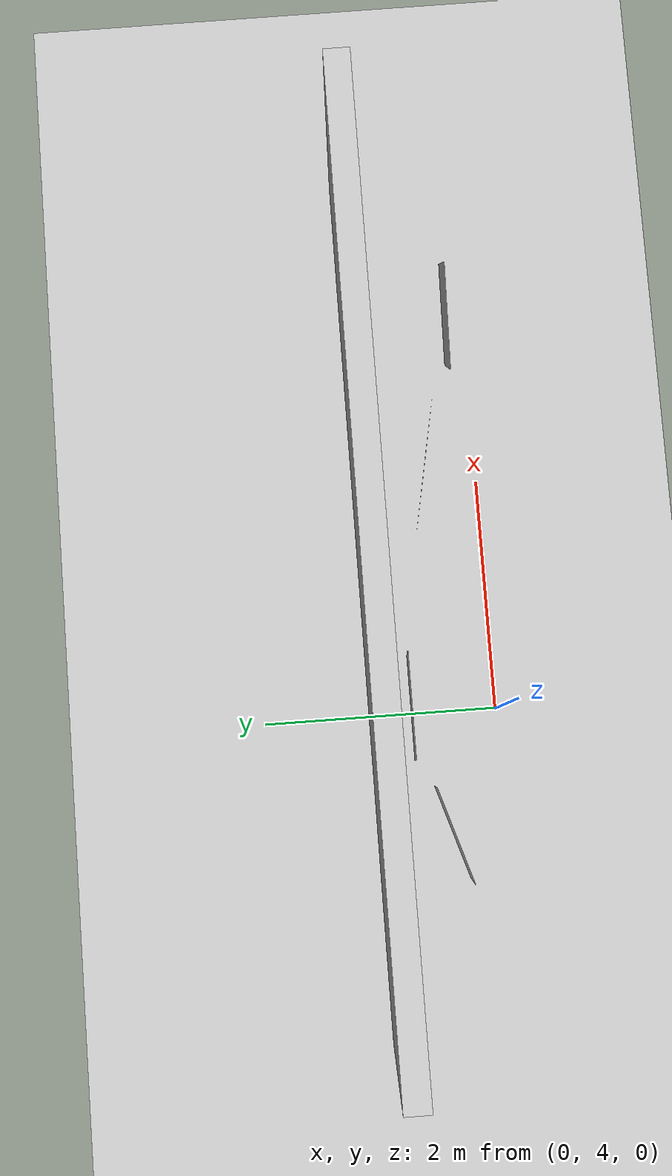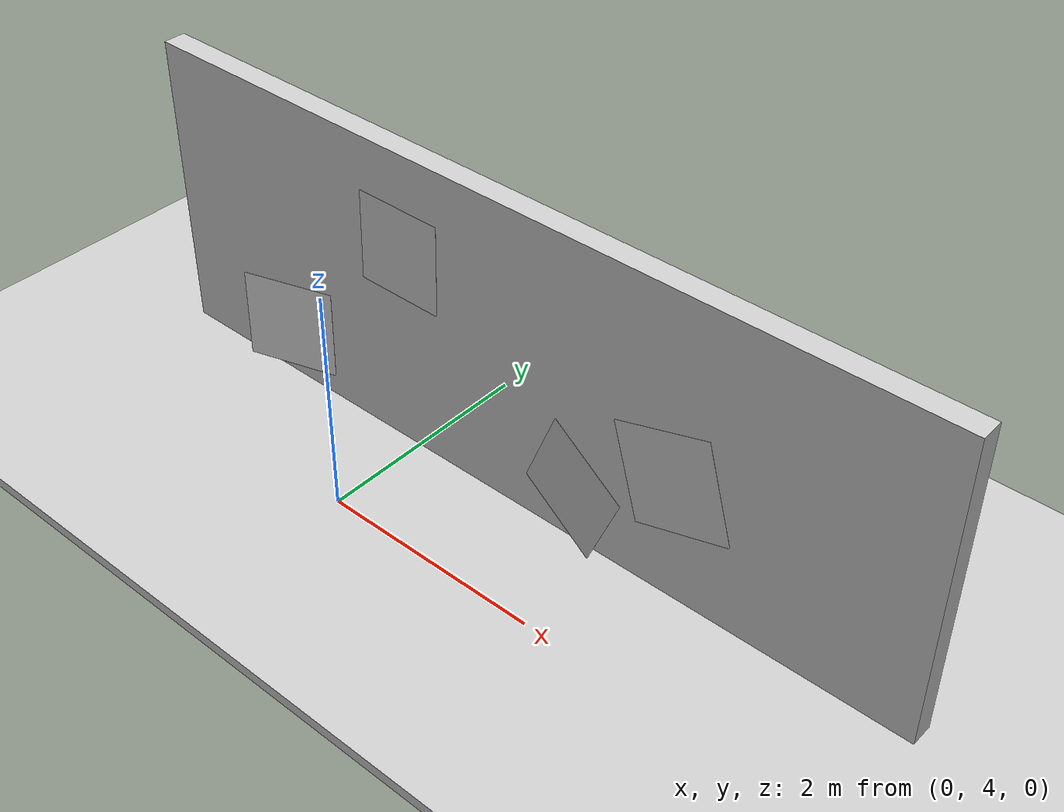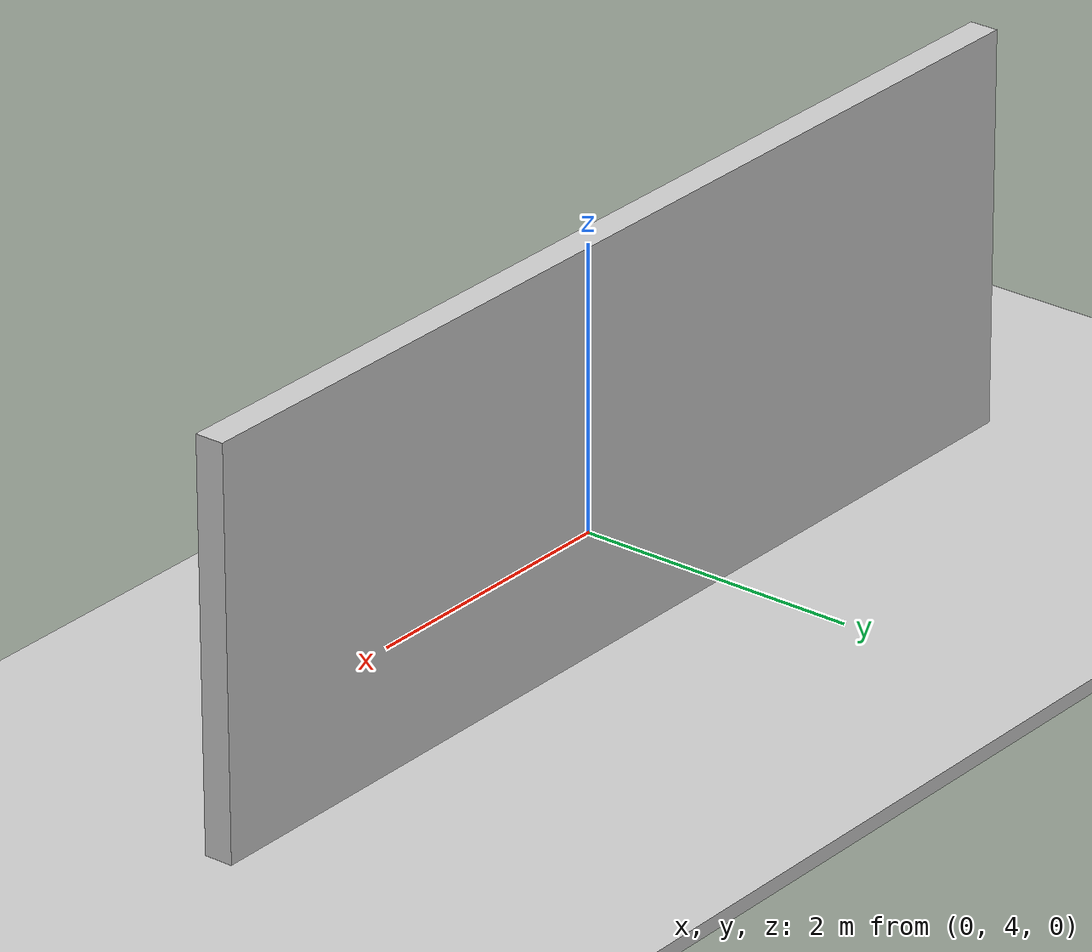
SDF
<sdf version="1.7">
 <world name="default">
  <plugin filename="gz-sim-physics-system" name="gz::sim::systems::Physics"/>
  <plugin filename="gz-sim-scene-broadcaster-system" name="gz::sim::systems::SceneBroadcaster"/>
  <plugin filename="gz-sim-user-commands-system" name="gz::sim::systems::UserCommands"/>
  <plugin filename="gz-sim-sensors-system" name="gz::sim::systems::Sensors">
   <render_engine>ogre2</render_engine>
  </plugin>
  <light name="sun" type="directional">
   <pose>0 0 10 0 -0 0</pose>
   <diffuse>0.8 0.8 0.8 1</diffuse>
   <specular>0.2 0.2 0.2 1</specular>
   <attenuation>
    <range>1000</range>
    <constant>0.9</constant>
    <linear>0.01</linear>
    <quadratic>0.001</quadratic>
   </attenuation>
   <direction>-0.5 0.1 -0.9</direction>
   <spot><inner_angle>0</inner_angle><outer_angle>0</outer_angle><falloff>0</falloff></spot>
  </light>
  <model name="ground_plane">
   <static>1</static>
   <link name="link">
    <collision name="collision">
     <geometry><plane><normal>0 0 1</normal><size>100 100</size></plane></geometry>
     <surface>
      <contact><collide_bitmask>65535</collide_bitmask></contact>
      <friction><ode><mu>100</mu><mu2>50</mu2></ode></friction>
     </surface>
    </collision>
    <visual name="visual">
     <cast_shadows>0</cast_shadows>
     <geometry><plane><normal>0 0 1</normal><size>100 100</size></plane></geometry>
     <material>
      <script><uri>file://media/materials/scripts/gazebo.material</uri><name>Gazebo/Grey</name></script>
     </material>
    </visual>
   </link>
  </model>
  <gravity>0 0 -9.8</gravity>
  <magnetic_field>6e-06 2.3e-05 -4.2e-05</magnetic_field>
  <atmosphere type="adiabatic"/>
  <physics type="ode">
   <max_step_size>0.001</max_step_size>
   <real_time_factor>1</real_time_factor>
   <real_time_update_rate>1000</real_time_update_rate>
  </physics>
  <scene><ambient>0.4 0.4 0.4 1</ambient><background>0.7 0.7 0.7 1</background><shadows>1</shadows></scene>
  <spherical_coordinates>
   <surface_model>EARTH_WGS84</surface_model>
   <latitude_deg>0</latitude_deg>
   <longitude_deg>0</longitude_deg>
   <elevation>0</elevation>
   <heading_deg>0</heading_deg>
  </spherical_coordinates>
  <model name="asphalt_plane">
   <static>1</static>
   <link name="link">
    <collision name="collision"><geometry><box><size>20 20 0.1</size></box></geometry></collision>
    <visual name="visual">
     <cast_shadows>0</cast_shadows>
     <geometry><box><size>20 20 0.1</size></box></geometry>
     <material>
      <ambient>0.8 0.8 0.8 1</ambient>
      <diffuse>0.8 0.8 0.8 1</diffuse>
      <specular>0.5 0.5 0.5 1</specular>
      <pbr><metal><albedo_map>model://asphalt_plane/tarmac.png</albedo_map></metal></pbr>
     </material>
    </visual>
   </link>
  </model>
  <model name="grey_wall">
   <static>1</static>
   <link name="link">
    <pose>0 0 1.4 0 -0 0</pose>
    <collision name="collision"><geometry><box><size>7.5 0.2 2.8</size></box></geometry></collision>
    <visual name="visual">
     <cast_shadows>0</cast_shadows>
     <geometry><box><size>7.5 0.2 2.8</size></box></geometry>
     <material>
      <ambient>0.8 0.8 0.8 1</ambient>
      <diffuse>0.8 0.8 0.8 1</diffuse>
      <specular>0.5 0.5 0.5 1</specular>
      <pbr><metal><albedo_map>model://grey_wall/grey_wall.png</albedo_map></metal></pbr>
     </material>
    </visual>
   </link>
   <pose>1 5 0 0 -0 0</pose>
  </model>
  <model name="ArUco1">
   <static>1</static>
   <link name="link">
    <collision name="collision">
     <geometry><plane><normal>0 0 1</normal><size>.8 .8</size></plane></geometry>
     <surface><friction><ode><mu>100</mu><mu2>50</mu2></ode></friction></surface>
    </collision>
    <visual name="visual">
     <cast_shadows>0</cast_shadows>
     <geometry><plane><normal>0 0 1</normal><size>.8 .8</size></plane></geometry>
     <material>
      <ambient>0.8 0.8 0.8 1</ambient>
      <diffuse>0.8 0.8 0.8 1</diffuse>
      <specular>0.5 0.5 0.5 1</specular>
      <pbr><metal><albedo_map>model://ArUco/6X6_1000-96.png</albedo_map></metal></pbr>
     </material>
    </visual>
   </link>
   <pose>0 4.8 2 1.55 -0 0</pose>
  </model>
  <model name="ArUco2">
   <static>1</static>
   <link name="link">
    <collision name="collision">
     <geometry><plane><normal>0 0 1</normal><size>.8 .8</size></plane></geometry>
     <surface><friction><ode><mu>100</mu><mu2>50</mu2></ode></friction></surface>
    </collision>
    <visual name="visual">
     <cast_shadows>0</cast_shadows>
     <geometry><plane><normal>0 0 1</normal><size>.8 .8</size></plane></geometry>
     <material>
      <ambient>0.8 0.8 0.8 1</ambient>
      <diffuse>0.8 0.8 0.8 1</diffuse>
      <specular>0.5 0.5 0.5 1</specular>
      <pbr><metal><albedo_map>model://ArUco/6X6_1000-97.png</albedo_map></metal></pbr>
     </material>
    </visual>
   </link>
   <pose>3 4.3 1.8 1.55 -0.3 0</pose>
  </model>
  <model name="ArUco3">
   <static>1</static>
   <link name="link">
    <collision name="collision">
     <geometry><plane><normal>0 0 1</normal><size>.8 .8</size></plane></geometry>
     <surface><friction><ode><mu>100</mu><mu2>50</mu2></ode></friction></surface>
    </collision>
    <visual name="visual">
     <cast_shadows>0</cast_shadows>
     <geometry><plane><normal>0 0 1</normal><size>.8 .8</size></plane></geometry>
     <material>
      <ambient>0.8 0.8 0.8 1</ambient>
      <diffuse>0.8 0.8 0.8 1</diffuse>
      <specular>0.5 0.5 0.5 1</specular>
      <pbr><metal><albedo_map>model://ArUco/6X6_1000-98.png</albedo_map></metal></pbr>
     </material>
    </visual>
   </link>
   <pose>-1 4.5 1 1.55 -0 .30</pose>
  </model>
  <model name="ArUco4">
   <static>1</static>
   <link name="link">
    <collision name="collision">
     <geometry><plane><normal>0 0 1</normal><size>.8 .8</size></plane></geometry>
     <surface><friction><ode><mu>100</mu><mu2>50</mu2></ode></friction></surface>
    </collision>
    <visual name="visual">
     <cast_shadows>0</cast_shadows>
     <geometry><plane><normal>0 0 1</normal><size>.8 .8</size></plane></geometry>
     <material>
      <ambient>0.8 0.8 0.8 1</ambient>
      <diffuse>0.8 0.8 0.8 1</diffuse>
      <specular>0.5 0.5 0.5 1</specular>
      <pbr><metal><albedo_map>model://ArUco/6X6_1000-99.png</albedo_map></metal></pbr>
     </material>
    </visual>
   </link>
   <pose>2 4.5 1 1.55 .4 -.2</pose>
  </model>
 </world>
</sdf>
